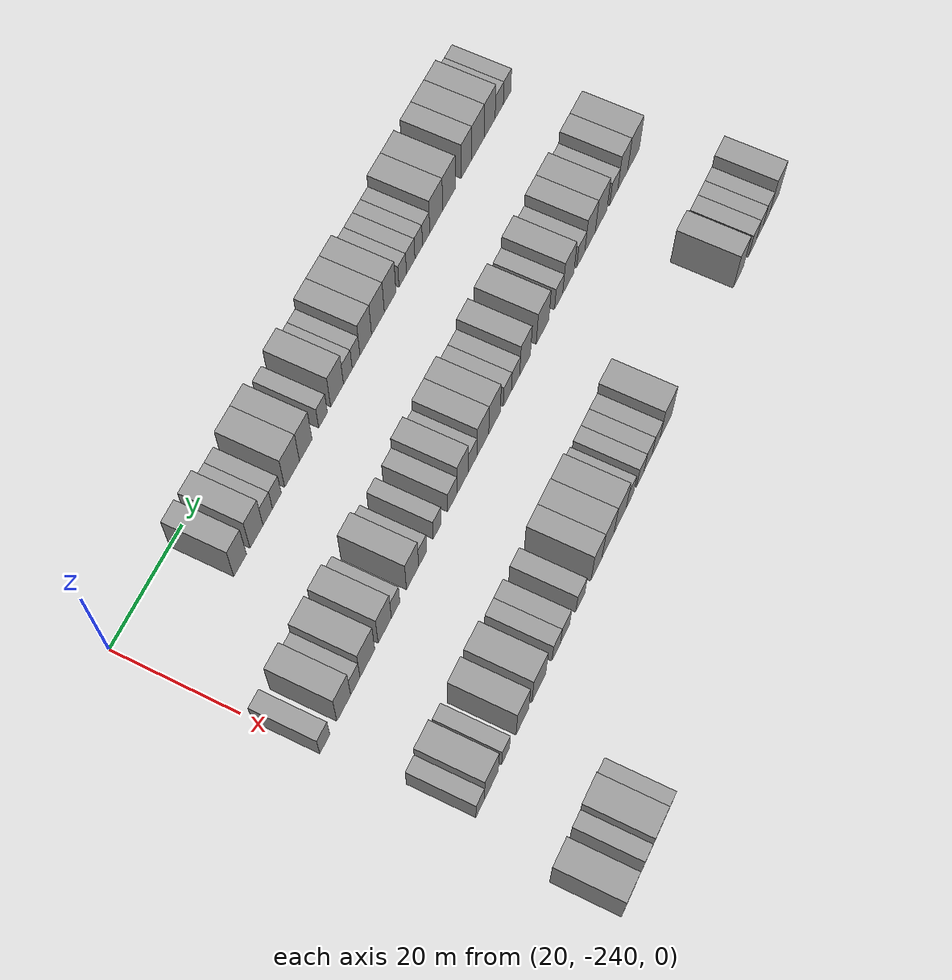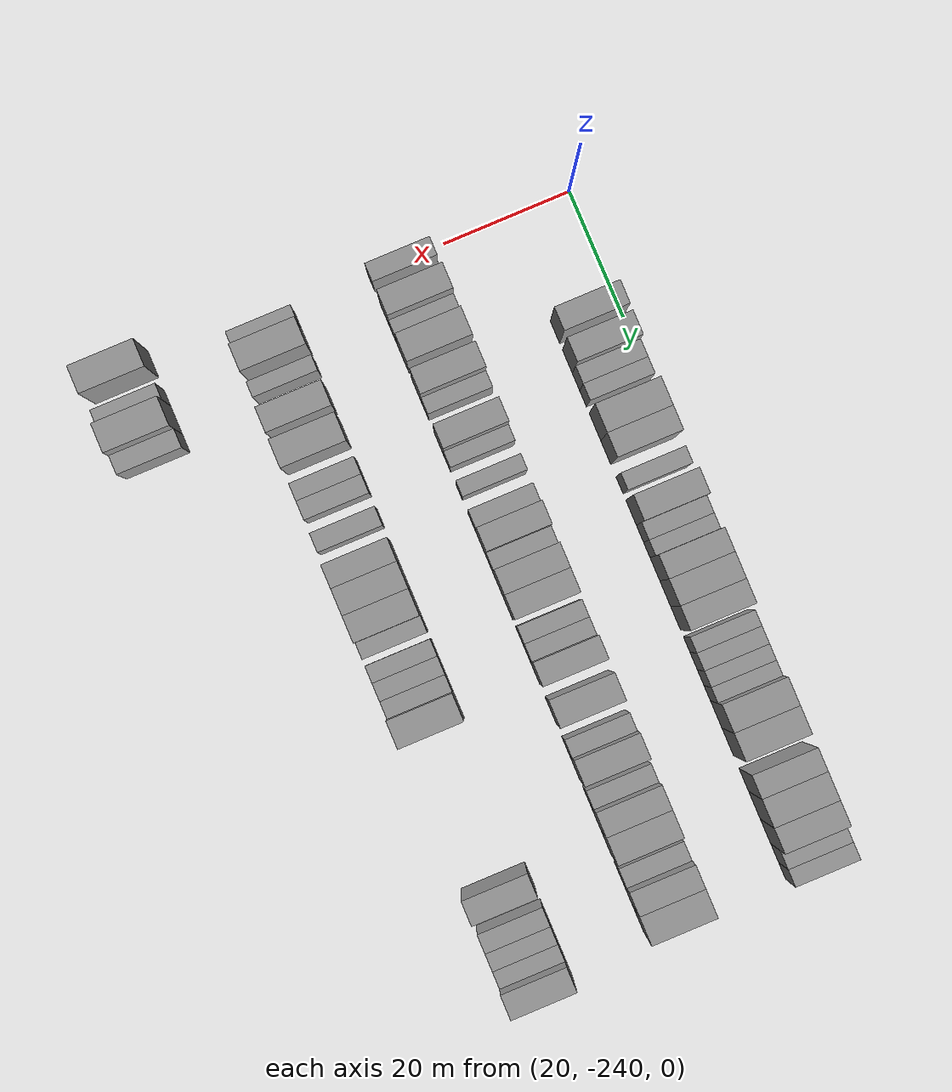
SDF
<sdf version="1.6">
 <world name="default">
  <model name="building_37">
   <static>1</static>
   <pose>25.0000 -221.7354 0 0.000000 0.000000 0.000000</pose>
   <link name="link">
    <pose>0 0 4.50 0 0 0</pose>
    <collision name="collision"><geometry><box><size>10.0000 3.6124 9.0000</size></box></geometry></collision>
    <visual name="visual">
     <cast_shadows>0</cast_shadows>
     <geometry><box><size>10.0000 3.6124 9.0000</size></box></geometry>
     <material>
      <script>
       <uri>model://grey_wall/materials/scripts</uri>
       <uri>model://grey_wall/materials/textures</uri>
       <name>vrc/grey_wall</name>
      </script>
     </material>
    </visual>
   </link>
  </model>
  <model name="building_38">
   <static>1</static>
   <pose>25.0000 -217.0617 0 0.000000 0.000000 0.000000</pose>
   <link name="link">
    <pose>0 0 4.50 0 0 0</pose>
    <collision name="collision"><geometry><box><size>10.0000 3.7349 9.0000</size></box></geometry></collision>
    <visual name="visual">
     <cast_shadows>0</cast_shadows>
     <geometry><box><size>10.0000 3.7349 9.0000</size></box></geometry>
     <material>
      <script>
       <uri>model://grey_wall/materials/scripts</uri>
       <uri>model://grey_wall/materials/textures</uri>
       <name>vrc/grey_wall</name>
      </script>
     </material>
    </visual>
   </link>
  </model>
  <model name="building_39">
   <static>1</static>
   <pose>25.0000 -213.8216 0 0.000000 0.000000 0.000000</pose>
   <link name="link">
    <pose>0 0 3.00 0 0 0</pose>
    <collision name="collision"><geometry><box><size>10.0000 2.7454 6.0000</size></box></geometry></collision>
    <visual name="visual">
     <cast_shadows>0</cast_shadows>
     <geometry><box><size>10.0000 2.7454 6.0000</size></box></geometry>
     <material>
      <script>
       <uri>model://grey_wall/materials/scripts</uri>
       <uri>model://grey_wall/materials/textures</uri>
       <name>vrc/grey_wall</name>
      </script>
     </material>
    </visual>
   </link>
  </model>
  <model name="building_40">
   <static>1</static>
   <pose>25.0000 -211.1552 0 0.000000 0.000000 0.000000</pose>
   <link name="link">
    <pose>0 0 3.00 0 0 0</pose>
    <collision name="collision"><geometry><box><size>10.0000 2.5873 6.0000</size></box></geometry></collision>
    <visual name="visual">
     <cast_shadows>0</cast_shadows>
     <geometry><box><size>10.0000 2.5873 6.0000</size></box></geometry>
     <material>
      <script>
       <uri>model://grey_wall/materials/scripts</uri>
       <uri>model://grey_wall/materials/textures</uri>
       <name>vrc/grey_wall</name>
      </script>
     </material>
    </visual>
   </link>
  </model>
  <model name="building_41">
   <static>1</static>
   <pose>25.0000 -206.6577 0 0.000000 0.000000 0.000000</pose>
   <link name="link">
    <pose>0 0 4.50 0 0 0</pose>
    <collision name="collision"><geometry><box><size>10.0000 4.4078 9.0000</size></box></geometry></collision>
    <visual name="visual">
     <cast_shadows>0</cast_shadows>
     <geometry><box><size>10.0000 4.4078 9.0000</size></box></geometry>
     <material>
      <script>
       <uri>model://grey_wall/materials/scripts</uri>
       <uri>model://grey_wall/materials/textures</uri>
       <name>vrc/grey_wall</name>
      </script>
     </material>
    </visual>
   </link>
  </model>
  <model name="building_42">
   <static>1</static>
   <pose>25.0000 -202.5841 0 0.000000 0.000000 0.000000</pose>
   <link name="link">
    <pose>0 0 4.50 0 0 0</pose>
    <collision name="collision"><geometry><box><size>10.0000 3.7394 9.0000</size></box></geometry></collision>
    <visual name="visual">
     <cast_shadows>0</cast_shadows>
     <geometry><box><size>10.0000 3.7394 9.0000</size></box></geometry>
     <material>
      <script>
       <uri>model://grey_wall/materials/scripts</uri>
       <uri>model://grey_wall/materials/textures</uri>
       <name>vrc/grey_wall</name>
      </script>
     </material>
    </visual>
   </link>
  </model>
  <model name="building_43">
   <static>1</static>
   <pose>25.0000 -197.3861 0 0.000000 0.000000 0.000000</pose>
   <link name="link">
    <pose>0 0 3.00 0 0 0</pose>
    <collision name="collision"><geometry><box><size>10.0000 2.6565 6.0000</size></box></geometry></collision>
    <visual name="visual">
     <cast_shadows>0</cast_shadows>
     <geometry><box><size>10.0000 2.6565 6.0000</size></box></geometry>
     <material>
      <script>
       <uri>model://grey_wall/materials/scripts</uri>
       <uri>model://grey_wall/materials/textures</uri>
       <name>vrc/grey_wall</name>
      </script>
     </material>
    </visual>
   </link>
  </model>
  <model name="building_44">
   <static>1</static>
   <pose>25.0000 -193.0809 0 0.000000 0.000000 0.000000</pose>
   <link name="link">
    <pose>0 0 4.50 0 0 0</pose>
    <collision name="collision"><geometry><box><size>10.0000 3.9538 9.0000</size></box></geometry></collision>
    <visual name="visual">
     <cast_shadows>0</cast_shadows>
     <geometry><box><size>10.0000 3.9538 9.0000</size></box></geometry>
     <material>
      <script>
       <uri>model://grey_wall/materials/scripts</uri>
       <uri>model://grey_wall/materials/textures</uri>
       <name>vrc/grey_wall</name>
      </script>
     </material>
    </visual>
   </link>
  </model>
  <model name="building_45">
   <static>1</static>
   <pose>25.0000 -189.7467 0 0.000000 0.000000 0.000000</pose>
   <link name="link">
    <pose>0 0 3.00 0 0 0</pose>
    <collision name="collision"><geometry><box><size>10.0000 2.7145 6.0000</size></box></geometry></collision>
    <visual name="visual">
     <cast_shadows>0</cast_shadows>
     <geometry><box><size>10.0000 2.7145 6.0000</size></box></geometry>
     <material>
      <script>
       <uri>model://grey_wall/materials/scripts</uri>
       <uri>model://grey_wall/materials/textures</uri>
       <name>vrc/grey_wall</name>
      </script>
     </material>
    </visual>
   </link>
  </model>
  <model name="building_46">
   <static>1</static>
   <pose>25.0000 -187.1849 0 0.000000 0.000000 0.000000</pose>
   <link name="link">
    <pose>0 0 3.00 0 0 0</pose>
    <collision name="collision"><geometry><box><size>10.0000 2.4091 6.0000</size></box></geometry></collision>
    <visual name="visual">
     <cast_shadows>0</cast_shadows>
     <geometry><box><size>10.0000 2.4091 6.0000</size></box></geometry>
     <material>
      <script>
       <uri>model://grey_wall/materials/scripts</uri>
       <uri>model://grey_wall/materials/textures</uri>
       <name>vrc/grey_wall</name>
      </script>
     </material>
    </visual>
   </link>
  </model>
  <model name="building_47">
   <static>1</static>
   <pose>25.0000 -184.1422 0 0.000000 0.000000 0.000000</pose>
   <link name="link">
    <pose>0 0 4.50 0 0 0</pose>
    <collision name="collision"><geometry><box><size>10.0000 3.6763 9.0000</size></box></geometry></collision>
    <visual name="visual">
     <cast_shadows>0</cast_shadows>
     <geometry><box><size>10.0000 3.6763 9.0000</size></box></geometry>
     <material>
      <script>
       <uri>model://grey_wall/materials/scripts</uri>
       <uri>model://grey_wall/materials/textures</uri>
       <name>vrc/grey_wall</name>
      </script>
     </material>
    </visual>
   </link>
  </model>
  <model name="building_48">
   <static>1</static>
   <pose>25.0000 -180.2692 0 0.000000 0.000000 0.000000</pose>
   <link name="link">
    <pose>0 0 4.50 0 0 0</pose>
    <collision name="collision"><geometry><box><size>10.0000 4.0699 9.0000</size></box></geometry></collision>
    <visual name="visual">
     <cast_shadows>0</cast_shadows>
     <geometry><box><size>10.0000 4.0699 9.0000</size></box></geometry>
     <material>
      <script>
       <uri>model://grey_wall/materials/scripts</uri>
       <uri>model://grey_wall/materials/textures</uri>
       <name>vrc/grey_wall</name>
      </script>
     </material>
    </visual>
   </link>
  </model>
  <model name="building_49">
   <static>1</static>
   <pose>25.0000 -176.3630 0 0.000000 0.000000 0.000000</pose>
   <link name="link">
    <pose>0 0 4.50 0 0 0</pose>
    <collision name="collision"><geometry><box><size>10.0000 3.7425 9.0000</size></box></geometry></collision>
    <visual name="visual">
     <cast_shadows>0</cast_shadows>
     <geometry><box><size>10.0000 3.7425 9.0000</size></box></geometry>
     <material>
      <script>
       <uri>model://grey_wall/materials/scripts</uri>
       <uri>model://grey_wall/materials/textures</uri>
       <name>vrc/grey_wall</name>
      </script>
     </material>
    </visual>
   </link>
  </model>
  <model name="building_50">
   <static>1</static>
   <pose>25.0000 -172.2664 0 0.000000 0.000000 0.000000</pose>
   <link name="link">
    <pose>0 0 3.00 0 0 0</pose>
    <collision name="collision"><geometry><box><size>10.0000 2.4507 6.0000</size></box></geometry></collision>
    <visual name="visual">
     <cast_shadows>0</cast_shadows>
     <geometry><box><size>10.0000 2.4507 6.0000</size></box></geometry>
     <material>
      <script>
       <uri>model://grey_wall/materials/scripts</uri>
       <uri>model://grey_wall/materials/textures</uri>
       <name>vrc/grey_wall</name>
      </script>
     </material>
    </visual>
   </link>
  </model>
  <model name="building_51">
   <static>1</static>
   <pose>25.0000 -169.6635 0 0.000000 0.000000 0.000000</pose>
   <link name="link">
    <pose>0 0 3.00 0 0 0</pose>
    <collision name="collision"><geometry><box><size>10.0000 2.7552 6.0000</size></box></geometry></collision>
    <visual name="visual">
     <cast_shadows>0</cast_shadows>
     <geometry><box><size>10.0000 2.7552 6.0000</size></box></geometry>
     <material>
      <script>
       <uri>model://grey_wall/materials/scripts</uri>
       <uri>model://grey_wall/materials/textures</uri>
       <name>vrc/grey_wall</name>
      </script>
     </material>
    </visual>
   </link>
  </model>
  <model name="building_52">
   <static>1</static>
   <pose>25.0000 -167.0342 0 0.000000 0.000000 0.000000</pose>
   <link name="link">
    <pose>0 0 3.00 0 0 0</pose>
    <collision name="collision"><geometry><box><size>10.0000 2.5033 6.0000</size></box></geometry></collision>
    <visual name="visual">
     <cast_shadows>0</cast_shadows>
     <geometry><box><size>10.0000 2.5033 6.0000</size></box></geometry>
     <material>
      <script>
       <uri>model://grey_wall/materials/scripts</uri>
       <uri>model://grey_wall/materials/textures</uri>
       <name>vrc/grey_wall</name>
      </script>
     </material>
    </visual>
   </link>
  </model>
  <model name="building_53">
   <static>1</static>
   <pose>25.0000 -164.5823 0 0.000000 0.000000 0.000000</pose>
   <link name="link">
    <pose>0 0 3.00 0 0 0</pose>
    <collision name="collision"><geometry><box><size>10.0000 2.4005 6.0000</size></box></geometry></collision>
    <visual name="visual">
     <cast_shadows>0</cast_shadows>
     <geometry><box><size>10.0000 2.4005 6.0000</size></box></geometry>
     <material>
      <script>
       <uri>model://grey_wall/materials/scripts</uri>
       <uri>model://grey_wall/materials/textures</uri>
       <name>vrc/grey_wall</name>
      </script>
     </material>
    </visual>
   </link>
  </model>
  <model name="building_54">
   <static>1</static>
   <pose>25.0000 -161.2179 0 0.000000 0.000000 0.000000</pose>
   <link name="link">
    <pose>0 0 4.50 0 0 0</pose>
    <collision name="collision"><geometry><box><size>10.0000 4.3284 9.0000</size></box></geometry></collision>
    <visual name="visual">
     <cast_shadows>0</cast_shadows>
     <geometry><box><size>10.0000 4.3284 9.0000</size></box></geometry>
     <material>
      <script>
       <uri>model://grey_wall/materials/scripts</uri>
       <uri>model://grey_wall/materials/textures</uri>
       <name>vrc/grey_wall</name>
      </script>
     </material>
    </visual>
   </link>
  </model>
  <model name="building_55">
   <static>1</static>
   <pose>25.0000 -156.8901 0 0.000000 0.000000 0.000000</pose>
   <link name="link">
    <pose>0 0 4.50 0 0 0</pose>
    <collision name="collision"><geometry><box><size>10.0000 4.3271 9.0000</size></box></geometry></collision>
    <visual name="visual">
     <cast_shadows>0</cast_shadows>
     <geometry><box><size>10.0000 4.3271 9.0000</size></box></geometry>
     <material>
      <script>
       <uri>model://grey_wall/materials/scripts</uri>
       <uri>model://grey_wall/materials/textures</uri>
       <name>vrc/grey_wall</name>
      </script>
     </material>
    </visual>
   </link>
  </model>
  <model name="building_56">
   <static>1</static>
   <pose>25.0000 -150.9206 0 0.000000 0.000000 0.000000</pose>
   <link name="link">
    <pose>0 0 4.50 0 0 0</pose>
    <collision name="collision"><geometry><box><size>10.0000 3.6120 9.0000</size></box></geometry></collision>
    <visual name="visual">
     <cast_shadows>0</cast_shadows>
     <geometry><box><size>10.0000 3.6120 9.0000</size></box></geometry>
     <material>
      <script>
       <uri>model://grey_wall/materials/scripts</uri>
       <uri>model://grey_wall/materials/textures</uri>
       <name>vrc/grey_wall</name>
      </script>
     </material>
    </visual>
   </link>
  </model>
  <model name="building_57">
   <static>1</static>
   <pose>25.0000 -146.9471 0 0.000000 0.000000 0.000000</pose>
   <link name="link">
    <pose>0 0 4.50 0 0 0</pose>
    <collision name="collision"><geometry><box><size>10.0000 4.3351 9.0000</size></box></geometry></collision>
    <visual name="visual">
     <cast_shadows>0</cast_shadows>
     <geometry><box><size>10.0000 4.3351 9.0000</size></box></geometry>
     <material>
      <script>
       <uri>model://grey_wall/materials/scripts</uri>
       <uri>model://grey_wall/materials/textures</uri>
       <name>vrc/grey_wall</name>
      </script>
     </material>
    </visual>
   </link>
  </model>
  <model name="building_58">
   <static>1</static>
   <pose>25.0000 -142.8292 0 0.000000 0.000000 0.000000</pose>
   <link name="link">
    <pose>0 0 4.50 0 0 0</pose>
    <collision name="collision"><geometry><box><size>10.0000 3.9007 9.0000</size></box></geometry></collision>
    <visual name="visual">
     <cast_shadows>0</cast_shadows>
     <geometry><box><size>10.0000 3.9007 9.0000</size></box></geometry>
     <material>
      <script>
       <uri>model://grey_wall/materials/scripts</uri>
       <uri>model://grey_wall/materials/textures</uri>
       <name>vrc/grey_wall</name>
      </script>
     </material>
    </visual>
   </link>
  </model>
  <model name="building_59">
   <static>1</static>
   <pose>25.0000 -139.4191 0 0.000000 0.000000 0.000000</pose>
   <link name="link">
    <pose>0 0 3.00 0 0 0</pose>
    <collision name="collision"><geometry><box><size>10.0000 2.9196 6.0000</size></box></geometry></collision>
    <visual name="visual">
     <cast_shadows>0</cast_shadows>
     <geometry><box><size>10.0000 2.9196 6.0000</size></box></geometry>
     <material>
      <script>
       <uri>model://grey_wall/materials/scripts</uri>
       <uri>model://grey_wall/materials/textures</uri>
       <name>vrc/grey_wall</name>
      </script>
     </material>
    </visual>
   </link>
  </model>
  <model name="building_60">
   <static>1</static>
   <pose>25.0000 -136.6225 0 0.000000 0.000000 0.000000</pose>
   <link name="link">
    <pose>0 0 3.00 0 0 0</pose>
    <collision name="collision"><geometry><box><size>10.0000 2.6735 6.0000</size></box></geometry></collision>
    <visual name="visual">
     <cast_shadows>0</cast_shadows>
     <geometry><box><size>10.0000 2.6735 6.0000</size></box></geometry>
     <material>
      <script>
       <uri>model://grey_wall/materials/scripts</uri>
       <uri>model://grey_wall/materials/textures</uri>
       <name>vrc/grey_wall</name>
      </script>
     </material>
    </visual>
   </link>
  </model>
  <model name="building_230">
   <static>1</static>
   <pose>47.0000 -238.8315 0 0.000000 0.000000 0.000000</pose>
   <link name="link">
    <pose>0 0 3.00 0 0 0</pose>
    <collision name="collision"><geometry><box><size>10.0000 2.8522 6.0000</size></box></geometry></collision>
    <visual name="visual">
     <cast_shadows>0</cast_shadows>
     <geometry><box><size>10.0000 2.8522 6.0000</size></box></geometry>
     <material>
      <script>
       <uri>model://grey_wall/materials/scripts</uri>
       <uri>model://grey_wall/materials/textures</uri>
       <name>vrc/grey_wall</name>
      </script>
     </material>
    </visual>
   </link>
  </model>
  <model name="building_231">
   <static>1</static>
   <pose>47.0000 -233.4305 0 0.000000 0.000000 0.000000</pose>
   <link name="link">
    <pose>0 0 4.50 0 0 0</pose>
    <collision name="collision"><geometry><box><size>10.0000 3.9498 9.0000</size></box></geometry></collision>
    <visual name="visual">
     <cast_shadows>0</cast_shadows>
     <geometry><box><size>10.0000 3.9498 9.0000</size></box></geometry>
     <material>
      <script>
       <uri>model://grey_wall/materials/scripts</uri>
       <uri>model://grey_wall/materials/textures</uri>
       <name>vrc/grey_wall</name>
      </script>
     </material>
    </visual>
   </link>
  </model>
  <model name="building_232">
   <static>1</static>
   <pose>47.0000 -230.0992 0 0.000000 0.000000 0.000000</pose>
   <link name="link">
    <pose>0 0 3.00 0 0 0</pose>
    <collision name="collision"><geometry><box><size>10.0000 2.7128 6.0000</size></box></geometry></collision>
    <visual name="visual">
     <cast_shadows>0</cast_shadows>
     <geometry><box><size>10.0000 2.7128 6.0000</size></box></geometry>
     <material>
      <script>
       <uri>model://grey_wall/materials/scripts</uri>
       <uri>model://grey_wall/materials/textures</uri>
       <name>vrc/grey_wall</name>
      </script>
     </material>
    </visual>
   </link>
  </model>
  <model name="building_233">
   <static>1</static>
   <pose>47.0000 -226.5833 0 0.000000 0.000000 0.000000</pose>
   <link name="link">
    <pose>0 0 4.50 0 0 0</pose>
    <collision name="collision"><geometry><box><size>10.0000 4.3191 9.0000</size></box></geometry></collision>
    <visual name="visual">
     <cast_shadows>0</cast_shadows>
     <geometry><box><size>10.0000 4.3191 9.0000</size></box></geometry>
     <material>
      <script>
       <uri>model://grey_wall/materials/scripts</uri>
       <uri>model://grey_wall/materials/textures</uri>
       <name>vrc/grey_wall</name>
      </script>
     </material>
    </visual>
   </link>
  </model>
  <model name="building_234">
   <static>1</static>
   <pose>47.0000 -221.4672 0 0.000000 0.000000 0.000000</pose>
   <link name="link">
    <pose>0 0 4.50 0 0 0</pose>
    <collision name="collision"><geometry><box><size>10.0000 3.9131 9.0000</size></box></geometry></collision>
    <visual name="visual">
     <cast_shadows>0</cast_shadows>
     <geometry><box><size>10.0000 3.9131 9.0000</size></box></geometry>
     <material>
      <script>
       <uri>model://grey_wall/materials/scripts</uri>
       <uri>model://grey_wall/materials/textures</uri>
       <name>vrc/grey_wall</name>
      </script>
     </material>
    </visual>
   </link>
  </model>
  <model name="building_235">
   <static>1</static>
   <pose>47.0000 -218.2379 0 0.000000 0.000000 0.000000</pose>
   <link name="link">
    <pose>0 0 3.00 0 0 0</pose>
    <collision name="collision"><geometry><box><size>10.0000 2.5454 6.0000</size></box></geometry></collision>
    <visual name="visual">
     <cast_shadows>0</cast_shadows>
     <geometry><box><size>10.0000 2.5454 6.0000</size></box></geometry>
     <material>
      <script>
       <uri>model://grey_wall/materials/scripts</uri>
       <uri>model://grey_wall/materials/textures</uri>
       <name>vrc/grey_wall</name>
      </script>
     </material>
    </visual>
   </link>
  </model>
  <model name="building_236">
   <static>1</static>
   <pose>47.0000 -213.1006 0 0.000000 0.000000 0.000000</pose>
   <link name="link">
    <pose>0 0 4.50 0 0 0</pose>
    <collision name="collision"><geometry><box><size>10.0000 3.7292 9.0000</size></box></geometry></collision>
    <visual name="visual">
     <cast_shadows>0</cast_shadows>
     <geometry><box><size>10.0000 3.7292 9.0000</size></box></geometry>
     <material>
      <script>
       <uri>model://grey_wall/materials/scripts</uri>
       <uri>model://grey_wall/materials/textures</uri>
       <name>vrc/grey_wall</name>
      </script>
     </material>
    </visual>
   </link>
  </model>
  <model name="building_237">
   <static>1</static>
   <pose>47.0000 -209.9894 0 0.000000 0.000000 0.000000</pose>
   <link name="link">
    <pose>0 0 3.00 0 0 0</pose>
    <collision name="collision"><geometry><box><size>10.0000 2.4932 6.0000</size></box></geometry></collision>
    <visual name="visual">
     <cast_shadows>0</cast_shadows>
     <geometry><box><size>10.0000 2.4932 6.0000</size></box></geometry>
     <material>
      <script>
       <uri>model://grey_wall/materials/scripts</uri>
       <uri>model://grey_wall/materials/textures</uri>
       <name>vrc/grey_wall</name>
      </script>
     </material>
    </visual>
   </link>
  </model>
  <model name="building_238">
   <static>1</static>
   <pose>47.0000 -205.4947 0 0.000000 0.000000 0.000000</pose>
   <link name="link">
    <pose>0 0 3.00 0 0 0</pose>
    <collision name="collision"><geometry><box><size>10.0000 2.4963 6.0000</size></box></geometry></collision>
    <visual name="visual">
     <cast_shadows>0</cast_shadows>
     <geometry><box><size>10.0000 2.4963 6.0000</size></box></geometry>
     <material>
      <script>
       <uri>model://grey_wall/materials/scripts</uri>
       <uri>model://grey_wall/materials/textures</uri>
       <name>vrc/grey_wall</name>
      </script>
     </material>
    </visual>
   </link>
  </model>
  <model name="building_239">
   <static>1</static>
   <pose>47.0000 -200.7722 0 0.000000 0.000000 0.000000</pose>
   <link name="link">
    <pose>0 0 3.00 0 0 0</pose>
    <collision name="collision"><geometry><box><size>10.0000 2.9487 6.0000</size></box></geometry></collision>
    <visual name="visual">
     <cast_shadows>0</cast_shadows>
     <geometry><box><size>10.0000 2.9487 6.0000</size></box></geometry>
     <material>
      <script>
       <uri>model://grey_wall/materials/scripts</uri>
       <uri>model://grey_wall/materials/textures</uri>
       <name>vrc/grey_wall</name>
      </script>
     </material>
    </visual>
   </link>
  </model>
  <model name="building_240">
   <static>1</static>
   <pose>47.0000 -197.4707 0 0.000000 0.000000 0.000000</pose>
   <link name="link">
    <pose>0 0 4.50 0 0 0</pose>
    <collision name="collision"><geometry><box><size>10.0000 3.6543 9.0000</size></box></geometry></collision>
    <visual name="visual">
     <cast_shadows>0</cast_shadows>
     <geometry><box><size>10.0000 3.6543 9.0000</size></box></geometry>
     <material>
      <script>
       <uri>model://grey_wall/materials/scripts</uri>
       <uri>model://grey_wall/materials/textures</uri>
       <name>vrc/grey_wall</name>
      </script>
     </material>
    </visual>
   </link>
  </model>
  <model name="building_241">
   <static>1</static>
   <pose>47.0000 -194.2855 0 0.000000 0.000000 0.000000</pose>
   <link name="link">
    <pose>0 0 3.00 0 0 0</pose>
    <collision name="collision"><geometry><box><size>10.0000 2.7160 6.0000</size></box></geometry></collision>
    <visual name="visual">
     <cast_shadows>0</cast_shadows>
     <geometry><box><size>10.0000 2.7160 6.0000</size></box></geometry>
     <material>
      <script>
       <uri>model://grey_wall/materials/scripts</uri>
       <uri>model://grey_wall/materials/textures</uri>
       <name>vrc/grey_wall</name>
      </script>
     </material>
    </visual>
   </link>
  </model>
  <model name="building_242">
   <static>1</static>
   <pose>47.0000 -191.0176 0 0.000000 0.000000 0.000000</pose>
   <link name="link">
    <pose>0 0 4.50 0 0 0</pose>
    <collision name="collision"><geometry><box><size>10.0000 3.8198 9.0000</size></box></geometry></collision>
    <visual name="visual">
     <cast_shadows>0</cast_shadows>
     <geometry><box><size>10.0000 3.8198 9.0000</size></box></geometry>
     <material>
      <script>
       <uri>model://grey_wall/materials/scripts</uri>
       <uri>model://grey_wall/materials/textures</uri>
       <name>vrc/grey_wall</name>
      </script>
     </material>
    </visual>
   </link>
  </model>
  <model name="building_243">
   <static>1</static>
   <pose>47.0000 -187.2231 0 0.000000 0.000000 0.000000</pose>
   <link name="link">
    <pose>0 0 4.50 0 0 0</pose>
    <collision name="collision"><geometry><box><size>10.0000 3.7692 9.0000</size></box></geometry></collision>
    <visual name="visual">
     <cast_shadows>0</cast_shadows>
     <geometry><box><size>10.0000 3.7692 9.0000</size></box></geometry>
     <material>
      <script>
       <uri>model://grey_wall/materials/scripts</uri>
       <uri>model://grey_wall/materials/textures</uri>
       <name>vrc/grey_wall</name>
      </script>
     </material>
    </visual>
   </link>
  </model>
  <model name="building_244">
   <static>1</static>
   <pose>47.0000 -182.9879 0 0.000000 0.000000 0.000000</pose>
   <link name="link">
    <pose>0 0 3.00 0 0 0</pose>
    <collision name="collision"><geometry><box><size>10.0000 2.7013 6.0000</size></box></geometry></collision>
    <visual name="visual">
     <cast_shadows>0</cast_shadows>
     <geometry><box><size>10.0000 2.7013 6.0000</size></box></geometry>
     <material>
      <script>
       <uri>model://grey_wall/materials/scripts</uri>
       <uri>model://grey_wall/materials/textures</uri>
       <name>vrc/grey_wall</name>
      </script>
     </material>
    </visual>
   </link>
  </model>
  <model name="building_245">
   <static>1</static>
   <pose>47.0000 -180.2691 0 0.000000 0.000000 0.000000</pose>
   <link name="link">
    <pose>0 0 3.00 0 0 0</pose>
    <collision name="collision"><geometry><box><size>10.0000 2.7363 6.0000</size></box></geometry></collision>
    <visual name="visual">
     <cast_shadows>0</cast_shadows>
     <geometry><box><size>10.0000 2.7363 6.0000</size></box></geometry>
     <material>
      <script>
       <uri>model://grey_wall/materials/scripts</uri>
       <uri>model://grey_wall/materials/textures</uri>
       <name>vrc/grey_wall</name>
      </script>
     </material>
    </visual>
   </link>
  </model>
  <model name="building_246">
   <static>1</static>
   <pose>47.0000 -177.0716 0 0.000000 0.000000 0.000000</pose>
   <link name="link">
    <pose>0 0 4.50 0 0 0</pose>
    <collision name="collision"><geometry><box><size>10.0000 3.6588 9.0000</size></box></geometry></collision>
    <visual name="visual">
     <cast_shadows>0</cast_shadows>
     <geometry><box><size>10.0000 3.6588 9.0000</size></box></geometry>
     <material>
      <script>
       <uri>model://grey_wall/materials/scripts</uri>
       <uri>model://grey_wall/materials/textures</uri>
       <name>vrc/grey_wall</name>
      </script>
     </material>
    </visual>
   </link>
  </model>
  <model name="building_247">
   <static>1</static>
   <pose>47.0000 -171.1085 0 0.000000 0.000000 0.000000</pose>
   <link name="link">
    <pose>0 0 4.50 0 0 0</pose>
    <collision name="collision"><geometry><box><size>10.0000 4.2673 9.0000</size></box></geometry></collision>
    <visual name="visual">
     <cast_shadows>0</cast_shadows>
     <geometry><box><size>10.0000 4.2673 9.0000</size></box></geometry>
     <material>
      <script>
       <uri>model://grey_wall/materials/scripts</uri>
       <uri>model://grey_wall/materials/textures</uri>
       <name>vrc/grey_wall</name>
      </script>
     </material>
    </visual>
   </link>
  </model>
  <model name="building_248">
   <static>1</static>
   <pose>47.0000 -165.5632 0 0.000000 0.000000 0.000000</pose>
   <link name="link">
    <pose>0 0 3.00 0 0 0</pose>
    <collision name="collision"><geometry><box><size>10.0000 2.8233 6.0000</size></box></geometry></collision>
    <visual name="visual">
     <cast_shadows>0</cast_shadows>
     <geometry><box><size>10.0000 2.8233 6.0000</size></box></geometry>
     <material>
      <script>
       <uri>model://grey_wall/materials/scripts</uri>
       <uri>model://grey_wall/materials/textures</uri>
       <name>vrc/grey_wall</name>
      </script>
     </material>
    </visual>
   </link>
  </model>
  <model name="building_249">
   <static>1</static>
   <pose>47.0000 -162.1618 0 0.000000 0.000000 0.000000</pose>
   <link name="link">
    <pose>0 0 4.50 0 0 0</pose>
    <collision name="collision"><geometry><box><size>10.0000 3.9795 9.0000</size></box></geometry></collision>
    <visual name="visual">
     <cast_shadows>0</cast_shadows>
     <geometry><box><size>10.0000 3.9795 9.0000</size></box></geometry>
     <material>
      <script>
       <uri>model://grey_wall/materials/scripts</uri>
       <uri>model://grey_wall/materials/textures</uri>
       <name>vrc/grey_wall</name>
      </script>
     </material>
    </visual>
   </link>
  </model>
  <model name="building_250">
   <static>1</static>
   <pose>47.0000 -157.7402 0 0.000000 0.000000 0.000000</pose>
   <link name="link">
    <pose>0 0 3.00 0 0 0</pose>
    <collision name="collision"><geometry><box><size>10.0000 2.8637 6.0000</size></box></geometry></collision>
    <visual name="visual">
     <cast_shadows>0</cast_shadows>
     <geometry><box><size>10.0000 2.8637 6.0000</size></box></geometry>
     <material>
      <script>
       <uri>model://grey_wall/materials/scripts</uri>
       <uri>model://grey_wall/materials/textures</uri>
       <name>vrc/grey_wall</name>
      </script>
     </material>
    </visual>
   </link>
  </model>
  <model name="building_251">
   <static>1</static>
   <pose>47.0000 -154.4268 0 0.000000 0.000000 0.000000</pose>
   <link name="link">
    <pose>0 0 4.50 0 0 0</pose>
    <collision name="collision"><geometry><box><size>10.0000 3.7630 9.0000</size></box></geometry></collision>
    <visual name="visual">
     <cast_shadows>0</cast_shadows>
     <geometry><box><size>10.0000 3.7630 9.0000</size></box></geometry>
     <material>
      <script>
       <uri>model://grey_wall/materials/scripts</uri>
       <uri>model://grey_wall/materials/textures</uri>
       <name>vrc/grey_wall</name>
      </script>
     </material>
    </visual>
   </link>
  </model>
  <model name="building_252">
   <static>1</static>
   <pose>47.0000 -150.4282 0 0.000000 0.000000 0.000000</pose>
   <link name="link">
    <pose>0 0 4.50 0 0 0</pose>
    <collision name="collision"><geometry><box><size>10.0000 4.2341 9.0000</size></box></geometry></collision>
    <visual name="visual">
     <cast_shadows>0</cast_shadows>
     <geometry><box><size>10.0000 4.2341 9.0000</size></box></geometry>
     <material>
      <script>
       <uri>model://grey_wall/materials/scripts</uri>
       <uri>model://grey_wall/materials/textures</uri>
       <name>vrc/grey_wall</name>
      </script>
     </material>
    </visual>
   </link>
  </model>
  <model name="building_253">
   <static>1</static>
   <pose>47.0000 -145.8247 0 0.000000 0.000000 0.000000</pose>
   <link name="link">
    <pose>0 0 3.00 0 0 0</pose>
    <collision name="collision"><geometry><box><size>10.0000 2.9729 6.0000</size></box></geometry></collision>
    <visual name="visual">
     <cast_shadows>0</cast_shadows>
     <geometry><box><size>10.0000 2.9729 6.0000</size></box></geometry>
     <material>
      <script>
       <uri>model://grey_wall/materials/scripts</uri>
       <uri>model://grey_wall/materials/textures</uri>
       <name>vrc/grey_wall</name>
      </script>
     </material>
    </visual>
   </link>
  </model>
  <model name="building_254">
   <static>1</static>
   <pose>47.0000 -142.5172 0 0.000000 0.000000 0.000000</pose>
   <link name="link">
    <pose>0 0 4.50 0 0 0</pose>
    <collision name="collision"><geometry><box><size>10.0000 3.6422 9.0000</size></box></geometry></collision>
    <visual name="visual">
     <cast_shadows>0</cast_shadows>
     <geometry><box><size>10.0000 3.6422 9.0000</size></box></geometry>
     <material>
      <script>
       <uri>model://grey_wall/materials/scripts</uri>
       <uri>model://grey_wall/materials/textures</uri>
       <name>vrc/grey_wall</name>
      </script>
     </material>
    </visual>
   </link>
  </model>
  <model name="building_255">
   <static>1</static>
   <pose>47.0000 -138.5056 0 0.000000 0.000000 0.000000</pose>
   <link name="link">
    <pose>0 0 4.50 0 0 0</pose>
    <collision name="collision"><geometry><box><size>10.0000 4.3810 9.0000</size></box></geometry></collision>
    <visual name="visual">
     <cast_shadows>0</cast_shadows>
     <geometry><box><size>10.0000 4.3810 9.0000</size></box></geometry>
     <material>
      <script>
       <uri>model://grey_wall/materials/scripts</uri>
       <uri>model://grey_wall/materials/textures</uri>
       <name>vrc/grey_wall</name>
      </script>
     </material>
    </visual>
   </link>
  </model>
  <model name="building_422">
   <static>1</static>
   <pose>69.0000 -237.6391 0 0.000000 0.000000 0.000000</pose>
   <link name="link">
    <pose>0 0 3.00 0 0 0</pose>
    <collision name="collision"><geometry><box><size>10.0000 2.5281 6.0000</size></box></geometry></collision>
    <visual name="visual">
     <cast_shadows>0</cast_shadows>
     <geometry><box><size>10.0000 2.5281 6.0000</size></box></geometry>
     <material>
      <script>
       <uri>model://grey_wall/materials/scripts</uri>
       <uri>model://grey_wall/materials/textures</uri>
       <name>vrc/grey_wall</name>
      </script>
     </material>
    </visual>
   </link>
  </model>
  <model name="building_423">
   <static>1</static>
   <pose>69.0000 -234.2832 0 0.000000 0.000000 0.000000</pose>
   <link name="link">
    <pose>0 0 4.50 0 0 0</pose>
    <collision name="collision"><geometry><box><size>10.0000 4.1836 9.0000</size></box></geometry></collision>
    <visual name="visual">
     <cast_shadows>0</cast_shadows>
     <geometry><box><size>10.0000 4.1836 9.0000</size></box></geometry>
     <material>
      <script>
       <uri>model://grey_wall/materials/scripts</uri>
       <uri>model://grey_wall/materials/textures</uri>
       <name>vrc/grey_wall</name>
      </script>
     </material>
    </visual>
   </link>
  </model>
  <model name="building_424">
   <static>1</static>
   <pose>69.0000 -229.9822 0 0.000000 0.000000 0.000000</pose>
   <link name="link">
    <pose>0 0 3.00 0 0 0</pose>
    <collision name="collision"><geometry><box><size>10.0000 2.4184 6.0000</size></box></geometry></collision>
    <visual name="visual">
     <cast_shadows>0</cast_shadows>
     <geometry><box><size>10.0000 2.4184 6.0000</size></box></geometry>
     <material>
      <script>
       <uri>model://grey_wall/materials/scripts</uri>
       <uri>model://grey_wall/materials/textures</uri>
       <name>vrc/grey_wall</name>
      </script>
     </material>
    </visual>
   </link>
  </model>
  <model name="building_425">
   <static>1</static>
   <pose>69.0000 -224.8274 0 0.000000 0.000000 0.000000</pose>
   <link name="link">
    <pose>0 0 4.50 0 0 0</pose>
    <collision name="collision"><geometry><box><size>10.0000 3.8913 9.0000</size></box></geometry></collision>
    <visual name="visual">
     <cast_shadows>0</cast_shadows>
     <geometry><box><size>10.0000 3.8913 9.0000</size></box></geometry>
     <material>
      <script>
       <uri>model://grey_wall/materials/scripts</uri>
       <uri>model://grey_wall/materials/textures</uri>
       <name>vrc/grey_wall</name>
      </script>
     </material>
    </visual>
   </link>
  </model>
  <model name="building_426">
   <static>1</static>
   <pose>69.0000 -219.6962 0 0.000000 0.000000 0.000000</pose>
   <link name="link">
    <pose>0 0 4.50 0 0 0</pose>
    <collision name="collision"><geometry><box><size>10.0000 4.3710 9.0000</size></box></geometry></collision>
    <visual name="visual">
     <cast_shadows>0</cast_shadows>
     <geometry><box><size>10.0000 4.3710 9.0000</size></box></geometry>
     <material>
      <script>
       <uri>model://grey_wall/materials/scripts</uri>
       <uri>model://grey_wall/materials/textures</uri>
       <name>vrc/grey_wall</name>
      </script>
     </material>
    </visual>
   </link>
  </model>
  <model name="building_427">
   <static>1</static>
   <pose>69.0000 -214.1555 0 0.000000 0.000000 0.000000</pose>
   <link name="link">
    <pose>0 0 3.00 0 0 0</pose>
    <collision name="collision"><geometry><box><size>10.0000 2.7104 6.0000</size></box></geometry></collision>
    <visual name="visual">
     <cast_shadows>0</cast_shadows>
     <geometry><box><size>10.0000 2.7104 6.0000</size></box></geometry>
     <material>
      <script>
       <uri>model://grey_wall/materials/scripts</uri>
       <uri>model://grey_wall/materials/textures</uri>
       <name>vrc/grey_wall</name>
      </script>
     </material>
    </visual>
   </link>
  </model>
  <model name="building_428">
   <static>1</static>
   <pose>69.0000 -211.3332 0 0.000000 0.000000 0.000000</pose>
   <link name="link">
    <pose>0 0 3.00 0 0 0</pose>
    <collision name="collision"><geometry><box><size>10.0000 2.9342 6.0000</size></box></geometry></collision>
    <visual name="visual">
     <cast_shadows>0</cast_shadows>
     <geometry><box><size>10.0000 2.9342 6.0000</size></box></geometry>
     <material>
      <script>
       <uri>model://grey_wall/materials/scripts</uri>
       <uri>model://grey_wall/materials/textures</uri>
       <name>vrc/grey_wall</name>
      </script>
     </material>
    </visual>
   </link>
  </model>
  <model name="building_429">
   <static>1</static>
   <pose>69.0000 -206.3771 0 0.000000 0.000000 0.000000</pose>
   <link name="link">
    <pose>0 0 3.00 0 0 0</pose>
    <collision name="collision"><geometry><box><size>10.0000 2.9779 6.0000</size></box></geometry></collision>
    <visual name="visual">
     <cast_shadows>0</cast_shadows>
     <geometry><box><size>10.0000 2.9779 6.0000</size></box></geometry>
     <material>
      <script>
       <uri>model://grey_wall/materials/scripts</uri>
       <uri>model://grey_wall/materials/textures</uri>
       <name>vrc/grey_wall</name>
      </script>
     </material>
    </visual>
   </link>
  </model>
  <model name="building_430">
   <static>1</static>
   <pose>69.0000 -201.0816 0 0.000000 0.000000 0.000000</pose>
   <link name="link">
    <pose>0 0 4.50 0 0 0</pose>
    <collision name="collision"><geometry><box><size>10.0000 3.6130 9.0000</size></box></geometry></collision>
    <visual name="visual">
     <cast_shadows>0</cast_shadows>
     <geometry><box><size>10.0000 3.6130 9.0000</size></box></geometry>
     <material>
      <script>
       <uri>model://grey_wall/materials/scripts</uri>
       <uri>model://grey_wall/materials/textures</uri>
       <name>vrc/grey_wall</name>
      </script>
     </material>
    </visual>
   </link>
  </model>
  <model name="building_431">
   <static>1</static>
   <pose>69.0000 -197.2142 0 0.000000 0.000000 0.000000</pose>
   <link name="link">
    <pose>0 0 4.50 0 0 0</pose>
    <collision name="collision"><geometry><box><size>10.0000 4.1219 9.0000</size></box></geometry></collision>
    <visual name="visual">
     <cast_shadows>0</cast_shadows>
     <geometry><box><size>10.0000 4.1219 9.0000</size></box></geometry>
     <material>
      <script>
       <uri>model://grey_wall/materials/scripts</uri>
       <uri>model://grey_wall/materials/textures</uri>
       <name>vrc/grey_wall</name>
      </script>
     </material>
    </visual>
   </link>
  </model>
  <model name="building_432">
   <static>1</static>
   <pose>69.0000 -193.0951 0 0.000000 0.000000 0.000000</pose>
   <link name="link">
    <pose>0 0 4.50 0 0 0</pose>
    <collision name="collision"><geometry><box><size>10.0000 4.1162 9.0000</size></box></geometry></collision>
    <visual name="visual">
     <cast_shadows>0</cast_shadows>
     <geometry><box><size>10.0000 4.1162 9.0000</size></box></geometry>
     <material>
      <script>
       <uri>model://grey_wall/materials/scripts</uri>
       <uri>model://grey_wall/materials/textures</uri>
       <name>vrc/grey_wall</name>
      </script>
     </material>
    </visual>
   </link>
  </model>
  <model name="building_433">
   <static>1</static>
   <pose>69.0000 -189.7545 0 0.000000 0.000000 0.000000</pose>
   <link name="link">
    <pose>0 0 3.00 0 0 0</pose>
    <collision name="collision"><geometry><box><size>10.0000 2.5651 6.0000</size></box></geometry></collision>
    <visual name="visual">
     <cast_shadows>0</cast_shadows>
     <geometry><box><size>10.0000 2.5651 6.0000</size></box></geometry>
     <material>
      <script>
       <uri>model://grey_wall/materials/scripts</uri>
       <uri>model://grey_wall/materials/textures</uri>
       <name>vrc/grey_wall</name>
      </script>
     </material>
    </visual>
   </link>
  </model>
  <model name="building_434">
   <static>1</static>
   <pose>69.0000 -186.1543 0 0.000000 0.000000 0.000000</pose>
   <link name="link">
    <pose>0 0 3.00 0 0 0</pose>
    <collision name="collision"><geometry><box><size>10.0000 2.6352 6.0000</size></box></geometry></collision>
    <visual name="visual">
     <cast_shadows>0</cast_shadows>
     <geometry><box><size>10.0000 2.6352 6.0000</size></box></geometry>
     <material>
      <script>
       <uri>model://grey_wall/materials/scripts</uri>
       <uri>model://grey_wall/materials/textures</uri>
       <name>vrc/grey_wall</name>
      </script>
     </material>
    </visual>
   </link>
  </model>
  <model name="building_435">
   <static>1</static>
   <pose>69.0000 -183.4346 0 0.000000 0.000000 0.000000</pose>
   <link name="link">
    <pose>0 0 3.00 0 0 0</pose>
    <collision name="collision"><geometry><box><size>10.0000 2.8043 6.0000</size></box></geometry></collision>
    <visual name="visual">
     <cast_shadows>0</cast_shadows>
     <geometry><box><size>10.0000 2.8043 6.0000</size></box></geometry>
     <material>
      <script>
       <uri>model://grey_wall/materials/scripts</uri>
       <uri>model://grey_wall/materials/textures</uri>
       <name>vrc/grey_wall</name>
      </script>
     </material>
    </visual>
   </link>
  </model>
  <model name="building_436">
   <static>1</static>
   <pose>69.0000 -180.6923 0 0.000000 0.000000 0.000000</pose>
   <link name="link">
    <pose>0 0 3.00 0 0 0</pose>
    <collision name="collision"><geometry><box><size>10.0000 2.6802 6.0000</size></box></geometry></collision>
    <visual name="visual">
     <cast_shadows>0</cast_shadows>
     <geometry><box><size>10.0000 2.6802 6.0000</size></box></geometry>
     <material>
      <script>
       <uri>model://grey_wall/materials/scripts</uri>
       <uri>model://grey_wall/materials/textures</uri>
       <name>vrc/grey_wall</name>
      </script>
     </material>
    </visual>
   </link>
  </model>
  <model name="building_437">
   <static>1</static>
   <pose>69.0000 -177.1961 0 0.000000 0.000000 0.000000</pose>
   <link name="link">
    <pose>0 0 4.50 0 0 0</pose>
    <collision name="collision"><geometry><box><size>10.0000 4.3123 9.0000</size></box></geometry></collision>
    <visual name="visual">
     <cast_shadows>0</cast_shadows>
     <geometry><box><size>10.0000 4.3123 9.0000</size></box></geometry>
     <material>
      <script>
       <uri>model://grey_wall/materials/scripts</uri>
       <uri>model://grey_wall/materials/textures</uri>
       <name>vrc/grey_wall</name>
      </script>
     </material>
    </visual>
   </link>
  </model>
  <model name="building_438">
   <static>1</static>
   <pose>69.0000 -150.3737 0 0.000000 0.000000 0.000000</pose>
   <link name="link">
    <pose>0 0 4.50 0 0 0</pose>
    <collision name="collision"><geometry><box><size>10.0000 3.7775 9.0000</size></box></geometry></collision>
    <visual name="visual">
     <cast_shadows>0</cast_shadows>
     <geometry><box><size>10.0000 3.7775 9.0000</size></box></geometry>
     <material>
      <script>
       <uri>model://grey_wall/materials/scripts</uri>
       <uri>model://grey_wall/materials/textures</uri>
       <name>vrc/grey_wall</name>
      </script>
     </material>
    </visual>
   </link>
  </model>
  <model name="building_439">
   <static>1</static>
   <pose>69.0000 -145.0125 0 0.000000 0.000000 0.000000</pose>
   <link name="link">
    <pose>0 0 3.00 0 0 0</pose>
    <collision name="collision"><geometry><box><size>10.0000 2.9449 6.0000</size></box></geometry></collision>
    <visual name="visual">
     <cast_shadows>0</cast_shadows>
     <geometry><box><size>10.0000 2.9449 6.0000</size></box></geometry>
     <material>
      <script>
       <uri>model://grey_wall/materials/scripts</uri>
       <uri>model://grey_wall/materials/textures</uri>
       <name>vrc/grey_wall</name>
      </script>
     </material>
    </visual>
   </link>
  </model>
  <model name="building_440">
   <static>1</static>
   <pose>69.0000 -142.1928 0 0.000000 0.000000 0.000000</pose>
   <link name="link">
    <pose>0 0 3.00 0 0 0</pose>
    <collision name="collision"><geometry><box><size>10.0000 2.6945 6.0000</size></box></geometry></collision>
    <visual name="visual">
     <cast_shadows>0</cast_shadows>
     <geometry><box><size>10.0000 2.6945 6.0000</size></box></geometry>
     <material>
      <script>
       <uri>model://grey_wall/materials/scripts</uri>
       <uri>model://grey_wall/materials/textures</uri>
       <name>vrc/grey_wall</name>
      </script>
     </material>
    </visual>
   </link>
  </model>
  <model name="building_441">
   <static>1</static>
   <pose>69.0000 -139.5391 0 0.000000 0.000000 0.000000</pose>
   <link name="link">
    <pose>0 0 3.00 0 0 0</pose>
    <collision name="collision"><geometry><box><size>10.0000 2.6129 6.0000</size></box></geometry></collision>
    <visual name="visual">
     <cast_shadows>0</cast_shadows>
     <geometry><box><size>10.0000 2.6129 6.0000</size></box></geometry>
     <material>
      <script>
       <uri>model://grey_wall/materials/scripts</uri>
       <uri>model://grey_wall/materials/textures</uri>
       <name>vrc/grey_wall</name>
      </script>
     </material>
    </visual>
   </link>
  </model>
  <model name="building_442">
   <static>1</static>
   <pose>69.0000 -136.3248 0 0.000000 0.000000 0.000000</pose>
   <link name="link">
    <pose>0 0 4.50 0 0 0</pose>
    <collision name="collision"><geometry><box><size>10.0000 3.8156 9.0000</size></box></geometry></collision>
    <visual name="visual">
     <cast_shadows>0</cast_shadows>
     <geometry><box><size>10.0000 3.8156 9.0000</size></box></geometry>
     <material>
      <script>
       <uri>model://grey_wall/materials/scripts</uri>
       <uri>model://grey_wall/materials/textures</uri>
       <name>vrc/grey_wall</name>
      </script>
     </material>
    </visual>
   </link>
  </model>
  <model name="building_599">
   <static>1</static>
   <pose>91.0000 -240.1301 0 0.000000 0.000000 0.000000</pose>
   <link name="link">
    <pose>0 0 4.50 0 0 0</pose>
    <collision name="collision"><geometry><box><size>10.0000 4.2467 9.0000</size></box></geometry></collision>
    <visual name="visual">
     <cast_shadows>0</cast_shadows>
     <geometry><box><size>10.0000 4.2467 9.0000</size></box></geometry>
     <material>
      <script>
       <uri>model://grey_wall/materials/scripts</uri>
       <uri>model://grey_wall/materials/textures</uri>
       <name>vrc/grey_wall</name>
      </script>
     </material>
    </visual>
   </link>
  </model>
  <model name="building_600">
   <static>1</static>
   <pose>91.0000 -234.7540 0 0.000000 0.000000 0.000000</pose>
   <link name="link">
    <pose>0 0 3.00 0 0 0</pose>
    <collision name="collision"><geometry><box><size>10.0000 2.5053 6.0000</size></box></geometry></collision>
    <visual name="visual">
     <cast_shadows>0</cast_shadows>
     <geometry><box><size>10.0000 2.5053 6.0000</size></box></geometry>
     <material>
      <script>
       <uri>model://grey_wall/materials/scripts</uri>
       <uri>model://grey_wall/materials/textures</uri>
       <name>vrc/grey_wall</name>
      </script>
     </material>
    </visual>
   </link>
  </model>
  <model name="building_601">
   <static>1</static>
   <pose>91.0000 -231.2602 0 0.000000 0.000000 0.000000</pose>
   <link name="link">
    <pose>0 0 4.50 0 0 0</pose>
    <collision name="collision"><geometry><box><size>10.0000 4.4823 9.0000</size></box></geometry></collision>
    <visual name="visual">
     <cast_shadows>0</cast_shadows>
     <geometry><box><size>10.0000 4.4823 9.0000</size></box></geometry>
     <material>
      <script>
       <uri>model://grey_wall/materials/scripts</uri>
       <uri>model://grey_wall/materials/textures</uri>
       <name>vrc/grey_wall</name>
      </script>
     </material>
    </visual>
   </link>
  </model>
  <model name="building_602">
   <static>1</static>
   <pose>91.0000 -227.5486 0 0.000000 0.000000 0.000000</pose>
   <link name="link">
    <pose>0 0 3.00 0 0 0</pose>
    <collision name="collision"><geometry><box><size>10.0000 2.9409 6.0000</size></box></geometry></collision>
    <visual name="visual">
     <cast_shadows>0</cast_shadows>
     <geometry><box><size>10.0000 2.9409 6.0000</size></box></geometry>
     <material>
      <script>
       <uri>model://grey_wall/materials/scripts</uri>
       <uri>model://grey_wall/materials/textures</uri>
       <name>vrc/grey_wall</name>
      </script>
     </material>
    </visual>
   </link>
  </model>
 </world>
</sdf>
